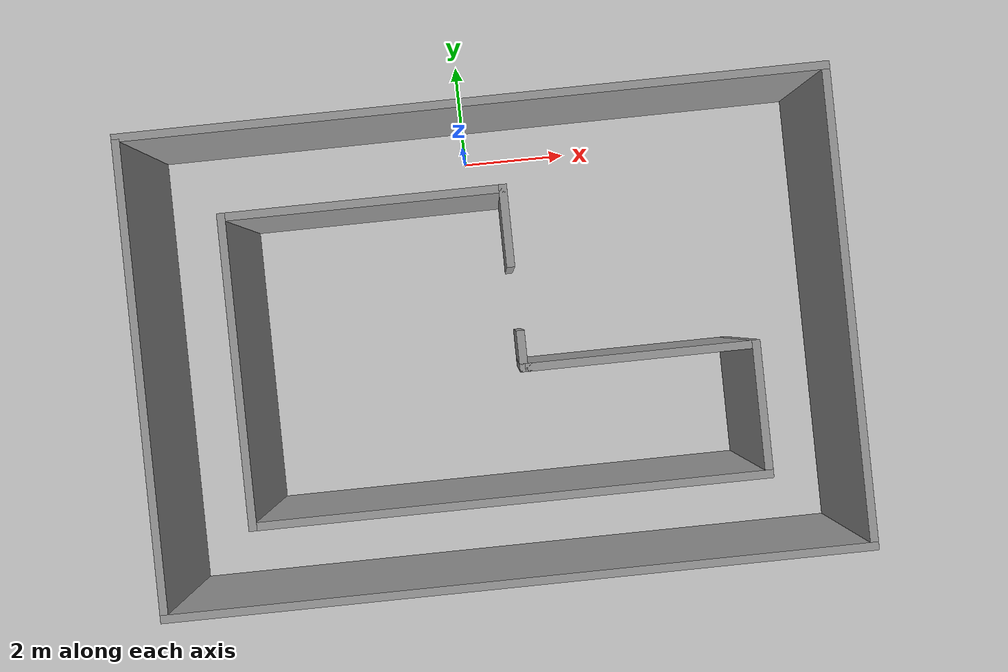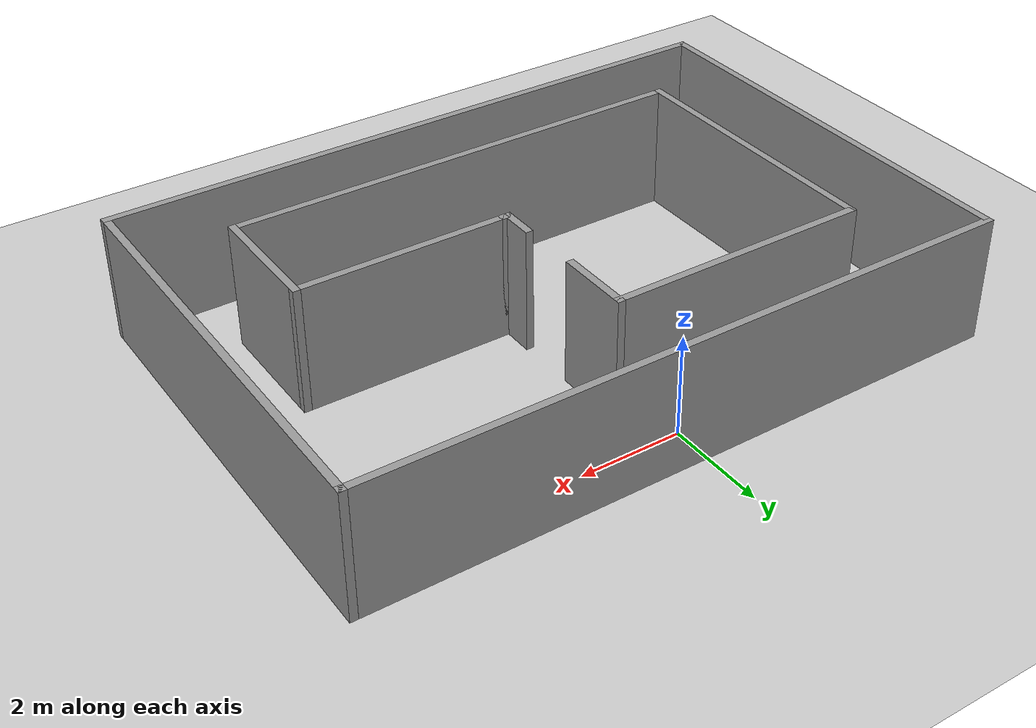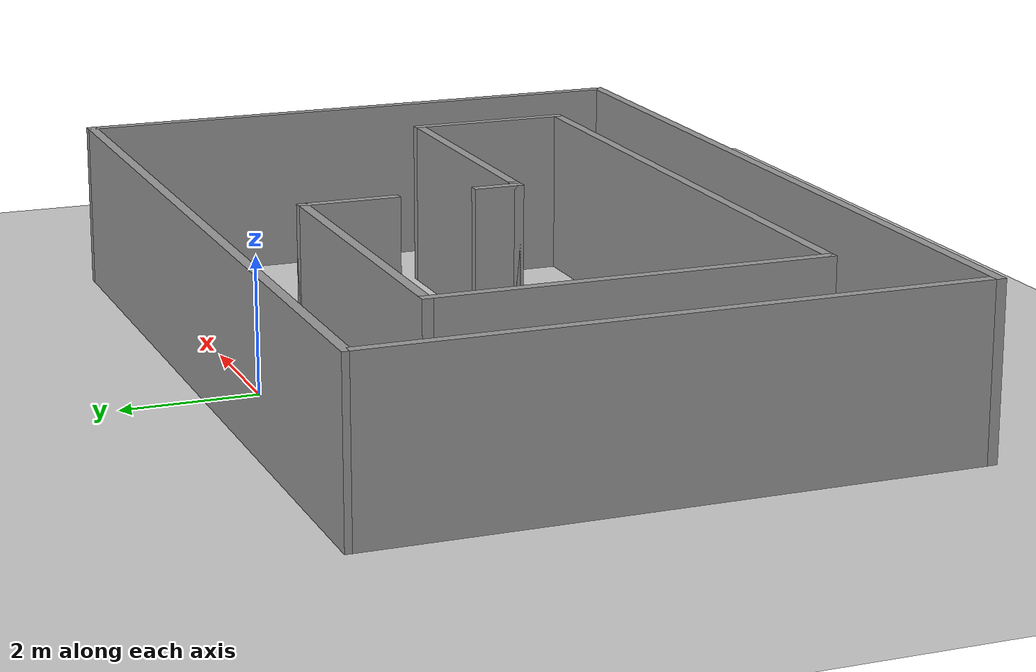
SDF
<sdf version="1.6">
 <world name="default">
  <light name="sun" type="directional">
   <pose>0 0 10 0 -0 0</pose>
   <diffuse>0.8 0.8 0.8 1</diffuse>
   <specular>0.1 0.1 0.1 1</specular>
   <attenuation>
    <range>1000</range>
    <constant>0.9</constant>
    <linear>0.01</linear>
    <quadratic>0.001</quadratic>
   </attenuation>
   <direction>-0.5 0.5 -1</direction>
  </light>
  <model name="ground_plane">
   <static>1</static>
   <link name="link">
    <collision name="collision">
     <geometry><plane><normal>0 0 1</normal><size>100 100</size></plane></geometry>
     <surface><friction><ode><mu>100</mu><mu2>50</mu2></ode></friction></surface>
    </collision>
    <visual name="visual">
     <cast_shadows>0</cast_shadows>
     <geometry><plane><normal>0 0 1</normal><size>100 100</size></plane></geometry>
     <material>
      <script><uri>file://media/materials/scripts/gazebo.material</uri><name>Gazebo/Grey</name></script>
     </material>
    </visual>
   </link>
  </model>
  <gravity>0 0 -9.8</gravity>
  <magnetic_field>6e-06 2.3e-05 -4.2e-05</magnetic_field>
  <atmosphere type="adiabatic"/>
  <physics name="default_physics" default="0" type="ode">
   <max_step_size>0.001</max_step_size>
   <real_time_factor>1</real_time_factor>
   <real_time_update_rate>1000</real_time_update_rate>
  </physics>
  <scene><ambient>0.4 0.4 0.4 1</ambient><background>0.7 0.7 0.7 1</background><shadows>1</shadows></scene>
  <spherical_coordinates>
   <surface_model>EARTH_WGS84</surface_model>
   <latitude_deg>0</latitude_deg>
   <longitude_deg>0</longitude_deg>
   <elevation>0</elevation>
   <heading_deg>0</heading_deg>
  </spherical_coordinates>
  <model name="Untitled_0">
   <pose>0.23383 -3.62607 0 0 -0 0</pose>
   <link name="Wall_101">
    <collision name="Wall_101_Collision">
     <geometry><box><size>13 0.15 2.5</size></box></geometry>
     <pose>0 0 1.25 0 -0 0</pose>
    </collision>
    <visual name="Wall_101_Visual">
     <pose>0 0 1.25 0 -0 0</pose>
     <geometry><box><size>13 0.15 2.5</size></box></geometry>
     <material>
      <script><uri>file://media/materials/scripts/gazebo.material</uri><name>Gazebo/Grey</name></script>
      <ambient>1 1 1 1</ambient>
     </material>
    </visual>
    <pose>0 -4.35 0 0 -0 0</pose>
   </link>
   <link name="Wall_103">
    <collision name="Wall_103_Collision">
     <geometry><box><size>8.75 0.15 2.5</size></box></geometry>
     <pose>0 0 1.25 0 -0 0</pose>
    </collision>
    <visual name="Wall_103_Visual">
     <pose>0 0 1.25 0 -0 0</pose>
     <geometry><box><size>8.75 0.15 2.5</size></box></geometry>
     <material>
      <script><uri>file://media/materials/scripts/gazebo.material</uri><name>Gazebo/Grey</name></script>
      <ambient>1 1 1 1</ambient>
     </material>
    </visual>
    <pose>-6.425 -0.05 0 0 -0 1.5708</pose>
   </link>
   <link name="Wall_105">
    <collision name="Wall_105_Collision">
     <geometry><box><size>13 0.15 2.5</size></box></geometry>
     <pose>0 0 1.25 0 -0 0</pose>
    </collision>
    <visual name="Wall_105_Visual">
     <pose>0 0 1.25 0 -0 0</pose>
     <geometry><box><size>13 0.15 2.5</size></box></geometry>
     <material>
      <script><uri>file://media/materials/scripts/gazebo.material</uri><name>Gazebo/Grey</name></script>
      <ambient>1 1 1 1</ambient>
     </material>
    </visual>
    <pose>0 4.35 0 0 -0 3.14159</pose>
   </link>
   <link name="Wall_107">
    <collision name="Wall_107_Collision">
     <geometry><box><size>8.75 0.15 2.5</size></box></geometry>
     <pose>0 0 1.25 0 -0 0</pose>
    </collision>
    <visual name="Wall_107_Visual">
     <pose>0 0 1.25 0 -0 0</pose>
     <geometry><box><size>8.75 0.15 2.5</size></box></geometry>
     <material>
      <script><uri>file://media/materials/scripts/gazebo.material</uri><name>Gazebo/Grey</name></script>
      <ambient>1 1 1 1</ambient>
     </material>
    </visual>
    <pose>6.425 0.05 0 0 0 -1.5708</pose>
   </link>
   <link name="Wall_109">
    <collision name="Wall_109_Collision">
     <geometry><box><size>5.75 0.15 2.5</size></box></geometry>
     <pose>0 0 1.25 0 -0 0</pose>
    </collision>
    <visual name="Wall_109_Visual">
     <pose>0 0 1.25 0 -0 0</pose>
     <geometry><box><size>5.75 0.15 2.5</size></box></geometry>
     <material>
      <script><uri>file://media/materials/scripts/gazebo.material</uri><name>Gazebo/Grey</name></script>
      <ambient>1 1 1 1</ambient>
     </material>
    </visual>
    <pose>-4.67572 -0.062823 0 0 0 -1.5708</pose>
   </link>
   <link name="Wall_111">
    <collision name="Wall_111_Collision">
     <geometry><box><size>9.5 0.15 2.5</size></box></geometry>
     <pose>0 0 1.25 0 -0 0</pose>
    </collision>
    <visual name="Wall_111_Visual">
     <pose>0 0 1.25 0 -0 0</pose>
     <geometry><box><size>9.5 0.15 2.5</size></box></geometry>
     <material>
      <script><uri>file://media/materials/scripts/gazebo.material</uri><name>Gazebo/Grey</name></script>
      <ambient>1 1 1 1</ambient>
     </material>
    </visual>
    <pose>-0.000716 -2.86282 0 0 -0 0</pose>
   </link>
   <link name="Wall_113">
    <collision name="Wall_113_Collision">
     <geometry><box><size>2.5 0.15 2.5</size></box></geometry>
     <pose>0 0 1.25 0 -0 0</pose>
    </collision>
    <visual name="Wall_113_Visual">
     <pose>0 0 1.25 0 -0 0</pose>
     <geometry><box><size>2.5 0.15 2.5</size></box></geometry>
     <material>
      <script><uri>file://media/materials/scripts/gazebo.material</uri><name>Gazebo/Grey</name></script>
      <ambient>1 1 1 1</ambient>
     </material>
    </visual>
    <pose>4.67428 -1.68782 0 0 -0 1.5708</pose>
   </link>
   <link name="Wall_124">
    <collision name="Wall_124_Collision">
     <geometry><box><size>0.15 0.15 2.5</size></box></geometry>
     <pose>0 0 1.25 0 -0 0</pose>
    </collision>
    <visual name="Wall_124_Visual">
     <pose>0 0 1.25 0 -0 0</pose>
     <geometry><box><size>0.15 0.15 2.5</size></box></geometry>
     <material>
      <script><uri>file://media/materials/scripts/gazebo.material</uri><name>Gazebo/Grey</name></script>
      <ambient>1 1 1 1</ambient>
     </material>
    </visual>
    <pose>0.574284 -0.512823 0 0 -0 0</pose>
   </link>
   <link name="Wall_136">
    <collision name="Wall_136_Collision">
     <geometry><box><size>4.25 0.15 2.5</size></box></geometry>
     <pose>0 0 1.25 0 -0 0</pose>
    </collision>
    <visual name="Wall_136_Visual">
     <pose>0 0 1.25 0 -0 0</pose>
     <geometry><box><size>4.25 0.15 2.5</size></box></geometry>
     <material>
      <script><uri>file://media/materials/scripts/gazebo.material</uri><name>Gazebo/Grey</name></script>
      <ambient>1 1 1 1</ambient>
     </material>
    </visual>
    <pose>2.62428 -0.512823 0 0 -0 0</pose>
   </link>
   <link name="Wall_138">
    <collision name="Wall_138_Collision">
     <geometry><box><size>0.25 0.15 2.5</size></box></geometry>
     <pose>0 0 1.25 0 -0 0</pose>
    </collision>
    <visual name="Wall_138_Visual">
     <pose>0 0 1.25 0 -0 0</pose>
     <geometry><box><size>0.25 0.15 2.5</size></box></geometry>
     <material>
      <script><uri>file://media/materials/scripts/gazebo.material</uri><name>Gazebo/Grey</name></script>
      <ambient>1 1 1 1</ambient>
     </material>
    </visual>
    <pose>0.524284 -0.512823 0 0 -0 3.14159</pose>
   </link>
   <link name="Wall_145">
    <collision name="Wall_145_Collision">
     <geometry><box><size>0.25 0.15 2.5</size></box></geometry>
     <pose>0 0 1.25 0 -0 0</pose>
    </collision>
    <visual name="Wall_145_Visual">
     <pose>0 0 1.25 0 -0 0</pose>
     <geometry><box><size>0.25 0.15 2.5</size></box></geometry>
     <material>
      <script><uri>file://media/materials/scripts/gazebo.material</uri><name>Gazebo/Grey</name></script>
      <ambient>1 1 1 1</ambient>
     </material>
    </visual>
    <pose>0.524284 -0.512823 0 0 -0 3.14159</pose>
   </link>
   <link name="Wall_146">
    <collision name="Wall_146_Collision">
     <geometry><box><size>0.75 0.15 2.5</size></box></geometry>
     <pose>0 0 1.25 0 -0 0</pose>
    </collision>
    <visual name="Wall_146_Visual">
     <pose>0 0 1.25 0 -0 0</pose>
     <geometry><box><size>0.75 0.15 2.5</size></box></geometry>
     <material>
      <script><uri>file://media/materials/scripts/gazebo.material</uri><name>Gazebo/Grey</name></script>
      <ambient>1 1 1 1</ambient>
     </material>
    </visual>
    <pose>0.474284 -0.212823 0 0 -0 1.5708</pose>
   </link>
   <link name="Wall_148">
    <collision name="Wall_148_Collision">
     <geometry><box><size>1.5 0.15 2.5</size></box></geometry>
     <pose>0 0 1.25 0 -0 0</pose>
    </collision>
    <visual name="Wall_148_Visual">
     <pose>0 0 1.25 0 -0 0</pose>
     <geometry><box><size>1.5 0.15 2.5</size></box></geometry>
     <material>
      <script><uri>file://media/materials/scripts/gazebo.material</uri><name>Gazebo/Grey</name></script>
      <ambient>1 1 1 1</ambient>
     </material>
    </visual>
    <pose>0.424284 2.06218 0 0 0 -1.5708</pose>
   </link>
   <link name="Wall_150">
    <collision name="Wall_150_Collision">
     <geometry><box><size>5.25 0.15 2.5</size></box></geometry>
     <pose>0 0 1.25 0 -0 0</pose>
    </collision>
    <visual name="Wall_150_Visual">
     <pose>0 0 1.25 0 -0 0</pose>
     <geometry><box><size>5.25 0.15 2.5</size></box></geometry>
     <material>
      <script><uri>file://media/materials/scripts/gazebo.material</uri><name>Gazebo/Grey</name></script>
      <ambient>1 1 1 1</ambient>
     </material>
    </visual>
    <pose>-2.12572 2.73718 0 0 -0 0</pose>
   </link>
   <link name="Wall_97">
    <collision name="Wall_97_Collision">
     <geometry><box><size>0.15 0.15 2.5</size></box></geometry>
     <pose>0 0 1.25 0 -0 0</pose>
    </collision>
    <visual name="Wall_97_Visual">
     <pose>0 0 1.25 0 -0 0</pose>
     <geometry><box><size>0.15 0.15 2.5</size></box></geometry>
     <material>
      <script><uri>file://media/materials/scripts/gazebo.material</uri><name>Gazebo/Grey</name></script>
      <ambient>1 1 1 1</ambient>
     </material>
    </visual>
    <pose>0.424284 2.73718 0 0 -0 0</pose>
   </link>
   <link name="Wall_98">
    <collision name="Wall_98_Collision">
     <geometry><box><size>0.15 0.15 2.5</size></box></geometry>
     <pose>0 0 1.25 0 -0 0</pose>
    </collision>
    <visual name="Wall_98_Visual">
     <pose>0 0 1.25 0 -0 0</pose>
     <geometry><box><size>0.15 0.15 2.5</size></box></geometry>
     <material>
      <script><uri>file://media/materials/scripts/gazebo.material</uri><name>Gazebo/Grey</name></script>
      <ambient>1 1 1 1</ambient>
     </material>
    </visual>
    <pose>0.424284 2.73718 0 0 -0 0</pose>
   </link>
   <static>1</static>
  </model>
 </world>
</sdf>
